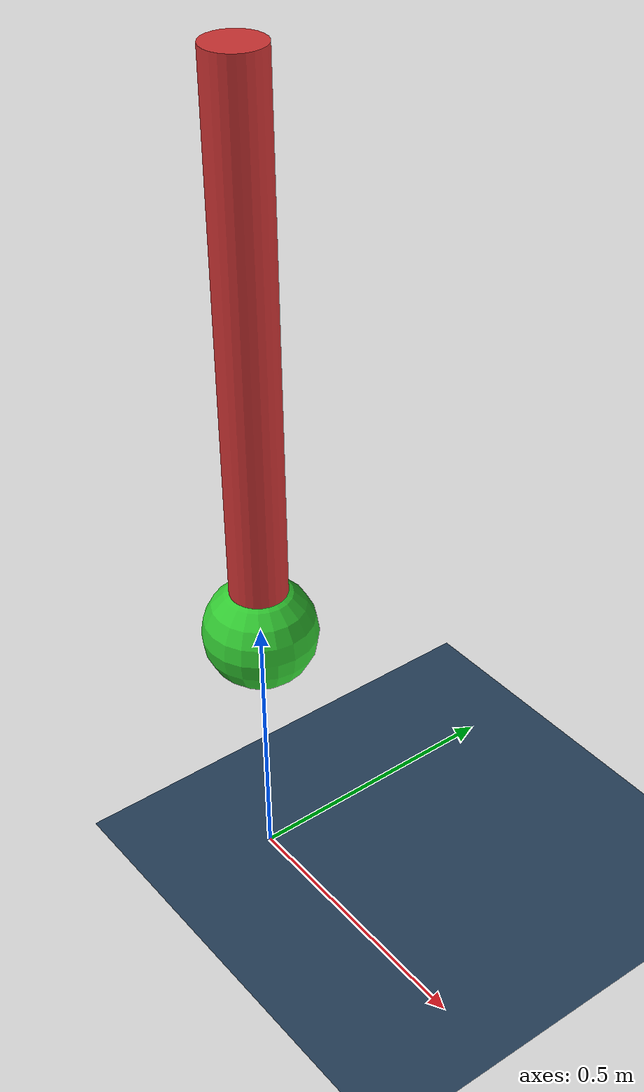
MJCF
<mujoco model="simple_pendulum">
  <compiler angle="radian"/>

  <option timestep="0.01" gravity="0 0 -9.81"/>

  <visual>
    <global offwidth="1280" offheight="720"/>
    <quality shadowsize="4096"/>
  </visual>

  <asset>
    <texture name="grid" type="2d" builtin="checker" width="512" height="512"
             rgb1=".1 .2 .3" rgb2=".2 .3 .4"/>
    <material name="grid" texture="grid" texrepeat="1 1" texuniform="true"
              reflectance=".2"/>
  </asset>

  <worldbody>
    <light pos="0 0 3" dir="0 0 -1" diffuse="1 1 1"/>
    <geom name="floor" type="plane" size="0 0 1" material="grid"/>

    <body name="pole" pos="0 0 1">
      <joint name="hinge" type="hinge" axis="0 1 0" damping="0.1"/>
      <geom name="pole" type="cylinder" size="0.05 0.5" rgba="0.8 0.2 0.2 1"/>
      <body name="tip" pos="0 0 -0.5">
        <geom name="tip" type="sphere" size="0.1" rgba="0.2 0.8 0.2 1"/>
      </body>
    </body>
  </worldbody>

  <actuator>
    <motor name="torque" joint="hinge" gear="1" ctrllimited="true" ctrlrange="-5 5"/>
  </actuator>
</mujoco>
